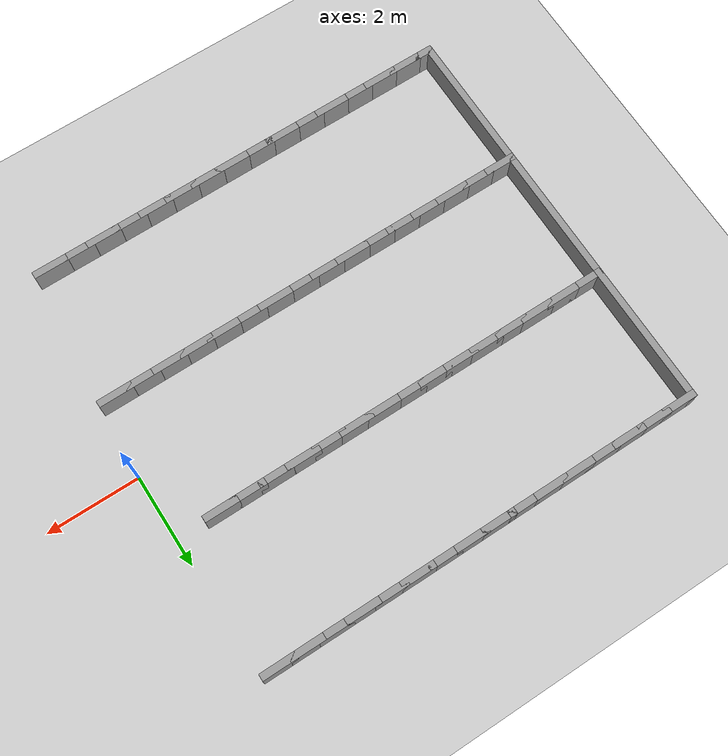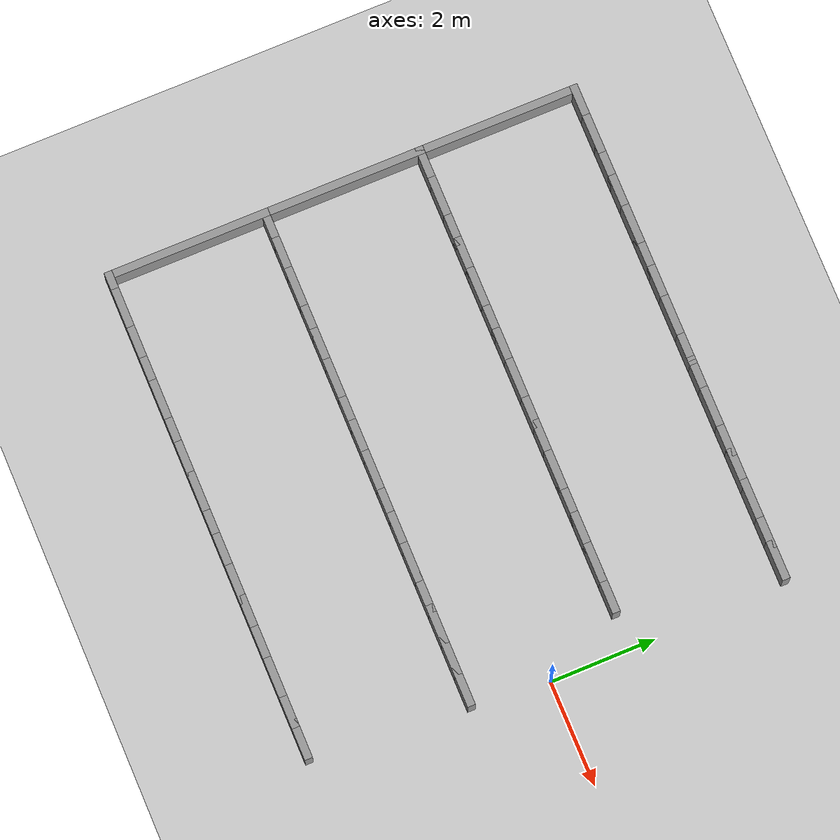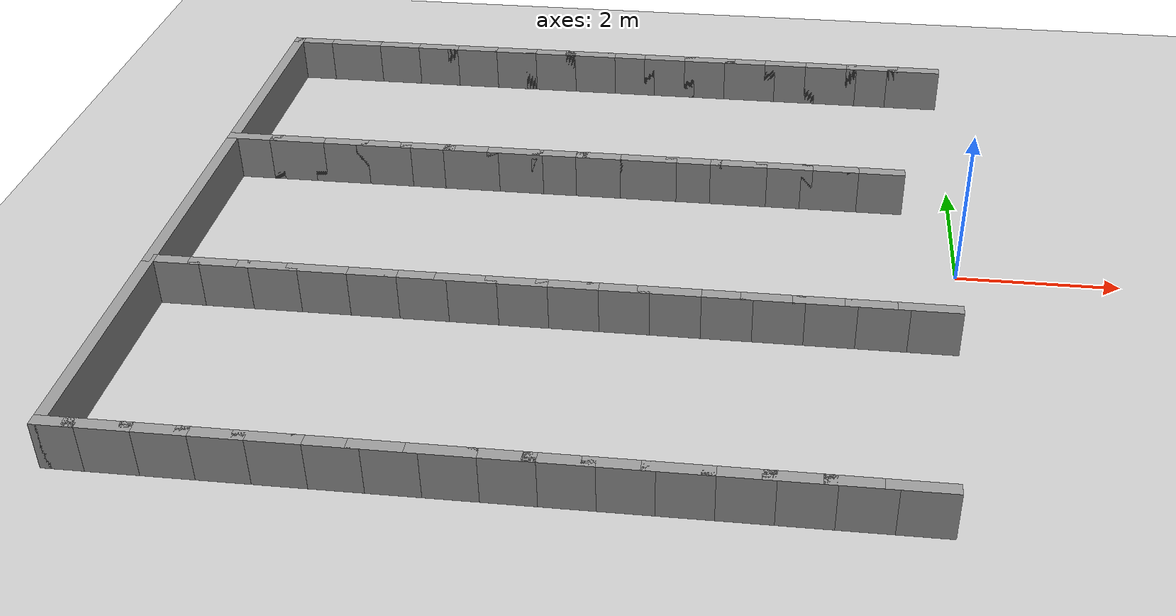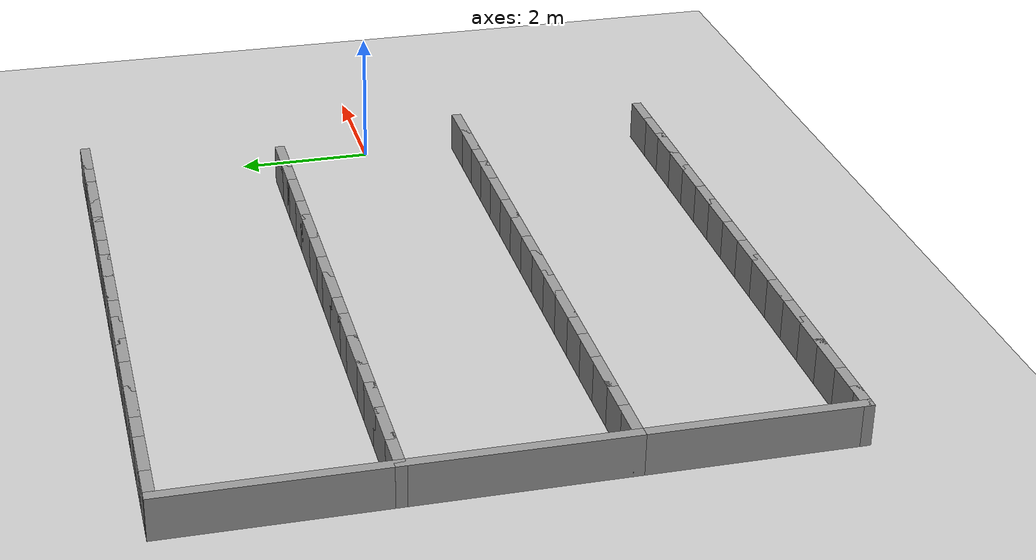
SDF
<sdf version="1.7">
 <world name="default">
  <model name="ground_plane">
   <static>1</static>
   <link name="link">
    <collision name="collision">
     <geometry><plane><normal>0 0 1</normal><size>100 100</size></plane></geometry>
     <surface><friction><ode><mu>100</mu><mu2>50</mu2></ode></friction></surface>
    </collision>
    <visual name="visual">
     <cast_shadows>0</cast_shadows>
     <geometry><plane><normal>0 0 1</normal><size>100 100</size></plane></geometry>
     <material>
      <script><uri>file://media/materials/scripts/gazebo.material</uri><name>Gazebo/Grey</name></script>
     </material>
    </visual>
   </link>
  </model>
  <model name="hairpin_safe">
   <link name="Wall_0">
    <collision name="Wall_0_Collision">
     <geometry><box><size>0.7500 0.1500 0.6000</size></box></geometry>
     <pose>0 0 0.3000 0 -0 0</pose>
    </collision>
    <visual name="Wall_0_Visual">
     <pose>0 0 0.3000 0 -0 0</pose>
     <geometry><box><size>0.7500 0.1500 0.6000</size></box></geometry>
     <material>
      <script><uri>file://media/materials/scripts/gazebo.material</uri><name>Gazebo/Grey</name></script>
      <ambient>1 1 1 1</ambient>
     </material>
    </visual>
    <pose>-9.4000 4.5000 0 0 -0 0.00000</pose>
   </link>
   <link name="Wall_1">
    <collision name="Wall_1_Collision">
     <geometry><box><size>0.7500 0.1500 0.6000</size></box></geometry>
     <pose>0 0 0.3000 0 -0 0</pose>
    </collision>
    <visual name="Wall_1_Visual">
     <pose>0 0 0.3000 0 -0 0</pose>
     <geometry><box><size>0.7500 0.1500 0.6000</size></box></geometry>
     <material>
      <script><uri>file://media/materials/scripts/gazebo.material</uri><name>Gazebo/Grey</name></script>
      <ambient>1 1 1 1</ambient>
     </material>
    </visual>
    <pose>-8.8000 4.5000 0 0 -0 0.00000</pose>
   </link>
   <link name="Wall_2">
    <collision name="Wall_2_Collision">
     <geometry><box><size>0.7500 0.1500 0.6000</size></box></geometry>
     <pose>0 0 0.3000 0 -0 0</pose>
    </collision>
    <visual name="Wall_2_Visual">
     <pose>0 0 0.3000 0 -0 0</pose>
     <geometry><box><size>0.7500 0.1500 0.6000</size></box></geometry>
     <material>
      <script><uri>file://media/materials/scripts/gazebo.material</uri><name>Gazebo/Grey</name></script>
      <ambient>1 1 1 1</ambient>
     </material>
    </visual>
    <pose>-8.2000 4.5000 0 0 -0 0.00000</pose>
   </link>
   <link name="Wall_3">
    <collision name="Wall_3_Collision">
     <geometry><box><size>0.7500 0.1500 0.6000</size></box></geometry>
     <pose>0 0 0.3000 0 -0 0</pose>
    </collision>
    <visual name="Wall_3_Visual">
     <pose>0 0 0.3000 0 -0 0</pose>
     <geometry><box><size>0.7500 0.1500 0.6000</size></box></geometry>
     <material>
      <script><uri>file://media/materials/scripts/gazebo.material</uri><name>Gazebo/Grey</name></script>
      <ambient>1 1 1 1</ambient>
     </material>
    </visual>
    <pose>-7.6000 4.5000 0 0 -0 0.00000</pose>
   </link>
   <link name="Wall_4">
    <collision name="Wall_4_Collision">
     <geometry><box><size>0.7500 0.1500 0.6000</size></box></geometry>
     <pose>0 0 0.3000 0 -0 0</pose>
    </collision>
    <visual name="Wall_4_Visual">
     <pose>0 0 0.3000 0 -0 0</pose>
     <geometry><box><size>0.7500 0.1500 0.6000</size></box></geometry>
     <material>
      <script><uri>file://media/materials/scripts/gazebo.material</uri><name>Gazebo/Grey</name></script>
      <ambient>1 1 1 1</ambient>
     </material>
    </visual>
    <pose>-7.0000 4.5000 0 0 -0 0.00000</pose>
   </link>
   <link name="Wall_5">
    <collision name="Wall_5_Collision">
     <geometry><box><size>0.7500 0.1500 0.6000</size></box></geometry>
     <pose>0 0 0.3000 0 -0 0</pose>
    </collision>
    <visual name="Wall_5_Visual">
     <pose>0 0 0.3000 0 -0 0</pose>
     <geometry><box><size>0.7500 0.1500 0.6000</size></box></geometry>
     <material>
      <script><uri>file://media/materials/scripts/gazebo.material</uri><name>Gazebo/Grey</name></script>
      <ambient>1 1 1 1</ambient>
     </material>
    </visual>
    <pose>-6.4000 4.5000 0 0 -0 0.00000</pose>
   </link>
   <link name="Wall_6">
    <collision name="Wall_6_Collision">
     <geometry><box><size>0.7500 0.1500 0.6000</size></box></geometry>
     <pose>0 0 0.3000 0 -0 0</pose>
    </collision>
    <visual name="Wall_6_Visual">
     <pose>0 0 0.3000 0 -0 0</pose>
     <geometry><box><size>0.7500 0.1500 0.6000</size></box></geometry>
     <material>
      <script><uri>file://media/materials/scripts/gazebo.material</uri><name>Gazebo/Grey</name></script>
      <ambient>1 1 1 1</ambient>
     </material>
    </visual>
    <pose>-5.8000 4.5000 0 0 -0 0.00000</pose>
   </link>
   <link name="Wall_7">
    <collision name="Wall_7_Collision">
     <geometry><box><size>0.7500 0.1500 0.6000</size></box></geometry>
     <pose>0 0 0.3000 0 -0 0</pose>
    </collision>
    <visual name="Wall_7_Visual">
     <pose>0 0 0.3000 0 -0 0</pose>
     <geometry><box><size>0.7500 0.1500 0.6000</size></box></geometry>
     <material>
      <script><uri>file://media/materials/scripts/gazebo.material</uri><name>Gazebo/Grey</name></script>
      <ambient>1 1 1 1</ambient>
     </material>
    </visual>
    <pose>-5.2000 4.5000 0 0 -0 0.00000</pose>
   </link>
   <link name="Wall_8">
    <collision name="Wall_8_Collision">
     <geometry><box><size>0.7500 0.1500 0.6000</size></box></geometry>
     <pose>0 0 0.3000 0 -0 0</pose>
    </collision>
    <visual name="Wall_8_Visual">
     <pose>0 0 0.3000 0 -0 0</pose>
     <geometry><box><size>0.7500 0.1500 0.6000</size></box></geometry>
     <material>
      <script><uri>file://media/materials/scripts/gazebo.material</uri><name>Gazebo/Grey</name></script>
      <ambient>1 1 1 1</ambient>
     </material>
    </visual>
    <pose>-4.6000 4.5000 0 0 -0 0.00000</pose>
   </link>
   <link name="Wall_9">
    <collision name="Wall_9_Collision">
     <geometry><box><size>0.7500 0.1500 0.6000</size></box></geometry>
     <pose>0 0 0.3000 0 -0 0</pose>
    </collision>
    <visual name="Wall_9_Visual">
     <pose>0 0 0.3000 0 -0 0</pose>
     <geometry><box><size>0.7500 0.1500 0.6000</size></box></geometry>
     <material>
      <script><uri>file://media/materials/scripts/gazebo.material</uri><name>Gazebo/Grey</name></script>
      <ambient>1 1 1 1</ambient>
     </material>
    </visual>
    <pose>-4.0000 4.5000 0 0 -0 0.00000</pose>
   </link>
   <link name="Wall_10">
    <collision name="Wall_10_Collision">
     <geometry><box><size>0.7500 0.1500 0.6000</size></box></geometry>
     <pose>0 0 0.3000 0 -0 0</pose>
    </collision>
    <visual name="Wall_10_Visual">
     <pose>0 0 0.3000 0 -0 0</pose>
     <geometry><box><size>0.7500 0.1500 0.6000</size></box></geometry>
     <material>
      <script><uri>file://media/materials/scripts/gazebo.material</uri><name>Gazebo/Grey</name></script>
      <ambient>1 1 1 1</ambient>
     </material>
    </visual>
    <pose>-3.4000 4.5000 0 0 -0 0.00000</pose>
   </link>
   <link name="Wall_11">
    <collision name="Wall_11_Collision">
     <geometry><box><size>0.7500 0.1500 0.6000</size></box></geometry>
     <pose>0 0 0.3000 0 -0 0</pose>
    </collision>
    <visual name="Wall_11_Visual">
     <pose>0 0 0.3000 0 -0 0</pose>
     <geometry><box><size>0.7500 0.1500 0.6000</size></box></geometry>
     <material>
      <script><uri>file://media/materials/scripts/gazebo.material</uri><name>Gazebo/Grey</name></script>
      <ambient>1 1 1 1</ambient>
     </material>
    </visual>
    <pose>-2.8000 4.5000 0 0 -0 0.00000</pose>
   </link>
   <link name="Wall_12">
    <collision name="Wall_12_Collision">
     <geometry><box><size>0.7500 0.1500 0.6000</size></box></geometry>
     <pose>0 0 0.3000 0 -0 0</pose>
    </collision>
    <visual name="Wall_12_Visual">
     <pose>0 0 0.3000 0 -0 0</pose>
     <geometry><box><size>0.7500 0.1500 0.6000</size></box></geometry>
     <material>
      <script><uri>file://media/materials/scripts/gazebo.material</uri><name>Gazebo/Grey</name></script>
      <ambient>1 1 1 1</ambient>
     </material>
    </visual>
    <pose>-2.2000 4.5000 0 0 -0 0.00000</pose>
   </link>
   <link name="Wall_13">
    <collision name="Wall_13_Collision">
     <geometry><box><size>0.7500 0.1500 0.6000</size></box></geometry>
     <pose>0 0 0.3000 0 -0 0</pose>
    </collision>
    <visual name="Wall_13_Visual">
     <pose>0 0 0.3000 0 -0 0</pose>
     <geometry><box><size>0.7500 0.1500 0.6000</size></box></geometry>
     <material>
      <script><uri>file://media/materials/scripts/gazebo.material</uri><name>Gazebo/Grey</name></script>
      <ambient>1 1 1 1</ambient>
     </material>
    </visual>
    <pose>-1.6000 4.5000 0 0 -0 0.00000</pose>
   </link>
   <link name="Wall_14">
    <collision name="Wall_14_Collision">
     <geometry><box><size>0.7500 0.1500 0.6000</size></box></geometry>
     <pose>0 0 0.3000 0 -0 0</pose>
    </collision>
    <visual name="Wall_14_Visual">
     <pose>0 0 0.3000 0 -0 0</pose>
     <geometry><box><size>0.7500 0.1500 0.6000</size></box></geometry>
     <material>
      <script><uri>file://media/materials/scripts/gazebo.material</uri><name>Gazebo/Grey</name></script>
      <ambient>1 1 1 1</ambient>
     </material>
    </visual>
    <pose>-1.0000 4.5000 0 0 -0 0.00000</pose>
   </link>
   <link name="Wall_15">
    <collision name="Wall_15_Collision">
     <geometry><box><size>0.7500 0.1500 0.6000</size></box></geometry>
     <pose>0 0 0.3000 0 -0 0</pose>
    </collision>
    <visual name="Wall_15_Visual">
     <pose>0 0 0.3000 0 -0 0</pose>
     <geometry><box><size>0.7500 0.1500 0.6000</size></box></geometry>
     <material>
      <script><uri>file://media/materials/scripts/gazebo.material</uri><name>Gazebo/Grey</name></script>
      <ambient>1 1 1 1</ambient>
     </material>
    </visual>
    <pose>-0.4000 4.5000 0 0 -0 0.00000</pose>
   </link>
   <link name="Wall_57">
    <collision name="Wall_57_Collision">
     <geometry><box><size>0.7500 0.1500 0.6000</size></box></geometry>
     <pose>0 0 0.3000 0 -0 0</pose>
    </collision>
    <visual name="Wall_57_Visual">
     <pose>0 0 0.3000 0 -0 0</pose>
     <geometry><box><size>0.7500 0.1500 0.6000</size></box></geometry>
     <material>
      <script><uri>file://media/materials/scripts/gazebo.material</uri><name>Gazebo/Grey</name></script>
      <ambient>1 1 1 1</ambient>
     </material>
    </visual>
    <pose>-0.6630 -4.5000 0 0 -0 3.14159</pose>
   </link>
   <link name="Wall_58">
    <collision name="Wall_58_Collision">
     <geometry><box><size>0.7500 0.1500 0.6000</size></box></geometry>
     <pose>0 0 0.3000 0 -0 0</pose>
    </collision>
    <visual name="Wall_58_Visual">
     <pose>0 0 0.3000 0 -0 0</pose>
     <geometry><box><size>0.7500 0.1500 0.6000</size></box></geometry>
     <material>
      <script><uri>file://media/materials/scripts/gazebo.material</uri><name>Gazebo/Grey</name></script>
      <ambient>1 1 1 1</ambient>
     </material>
    </visual>
    <pose>-1.2630 -4.5000 0 0 -0 3.14159</pose>
   </link>
   <link name="Wall_59">
    <collision name="Wall_59_Collision">
     <geometry><box><size>0.7500 0.1500 0.6000</size></box></geometry>
     <pose>0 0 0.3000 0 -0 0</pose>
    </collision>
    <visual name="Wall_59_Visual">
     <pose>0 0 0.3000 0 -0 0</pose>
     <geometry><box><size>0.7500 0.1500 0.6000</size></box></geometry>
     <material>
      <script><uri>file://media/materials/scripts/gazebo.material</uri><name>Gazebo/Grey</name></script>
      <ambient>1 1 1 1</ambient>
     </material>
    </visual>
    <pose>-1.8630 -4.5000 0 0 -0 3.14159</pose>
   </link>
   <link name="Wall_60">
    <collision name="Wall_60_Collision">
     <geometry><box><size>0.7500 0.1500 0.6000</size></box></geometry>
     <pose>0 0 0.3000 0 -0 0</pose>
    </collision>
    <visual name="Wall_60_Visual">
     <pose>0 0 0.3000 0 -0 0</pose>
     <geometry><box><size>0.7500 0.1500 0.6000</size></box></geometry>
     <material>
      <script><uri>file://media/materials/scripts/gazebo.material</uri><name>Gazebo/Grey</name></script>
      <ambient>1 1 1 1</ambient>
     </material>
    </visual>
    <pose>-2.4630 -4.5000 0 0 -0 3.14159</pose>
   </link>
   <link name="Wall_61">
    <collision name="Wall_61_Collision">
     <geometry><box><size>0.7500 0.1500 0.6000</size></box></geometry>
     <pose>0 0 0.3000 0 -0 0</pose>
    </collision>
    <visual name="Wall_61_Visual">
     <pose>0 0 0.3000 0 -0 0</pose>
     <geometry><box><size>0.7500 0.1500 0.6000</size></box></geometry>
     <material>
      <script><uri>file://media/materials/scripts/gazebo.material</uri><name>Gazebo/Grey</name></script>
      <ambient>1 1 1 1</ambient>
     </material>
    </visual>
    <pose>-3.0630 -4.5000 0 0 -0 3.14159</pose>
   </link>
   <link name="Wall_62">
    <collision name="Wall_62_Collision">
     <geometry><box><size>0.7500 0.1500 0.6000</size></box></geometry>
     <pose>0 0 0.3000 0 -0 0</pose>
    </collision>
    <visual name="Wall_62_Visual">
     <pose>0 0 0.3000 0 -0 0</pose>
     <geometry><box><size>0.7500 0.1500 0.6000</size></box></geometry>
     <material>
      <script><uri>file://media/materials/scripts/gazebo.material</uri><name>Gazebo/Grey</name></script>
      <ambient>1 1 1 1</ambient>
     </material>
    </visual>
    <pose>-3.6630 -4.5000 0 0 -0 3.14159</pose>
   </link>
   <link name="Wall_63">
    <collision name="Wall_63_Collision">
     <geometry><box><size>0.7500 0.1500 0.6000</size></box></geometry>
     <pose>0 0 0.3000 0 -0 0</pose>
    </collision>
    <visual name="Wall_63_Visual">
     <pose>0 0 0.3000 0 -0 0</pose>
     <geometry><box><size>0.7500 0.1500 0.6000</size></box></geometry>
     <material>
      <script><uri>file://media/materials/scripts/gazebo.material</uri><name>Gazebo/Grey</name></script>
      <ambient>1 1 1 1</ambient>
     </material>
    </visual>
    <pose>-4.2630 -4.5000 0 0 -0 3.14159</pose>
   </link>
   <link name="Wall_64">
    <collision name="Wall_64_Collision">
     <geometry><box><size>0.7500 0.1500 0.6000</size></box></geometry>
     <pose>0 0 0.3000 0 -0 0</pose>
    </collision>
    <visual name="Wall_64_Visual">
     <pose>0 0 0.3000 0 -0 0</pose>
     <geometry><box><size>0.7500 0.1500 0.6000</size></box></geometry>
     <material>
      <script><uri>file://media/materials/scripts/gazebo.material</uri><name>Gazebo/Grey</name></script>
      <ambient>1 1 1 1</ambient>
     </material>
    </visual>
    <pose>-4.8630 -4.5000 0 0 -0 3.14159</pose>
   </link>
   <link name="Wall_65">
    <collision name="Wall_65_Collision">
     <geometry><box><size>0.7500 0.1500 0.6000</size></box></geometry>
     <pose>0 0 0.3000 0 -0 0</pose>
    </collision>
    <visual name="Wall_65_Visual">
     <pose>0 0 0.3000 0 -0 0</pose>
     <geometry><box><size>0.7500 0.1500 0.6000</size></box></geometry>
     <material>
      <script><uri>file://media/materials/scripts/gazebo.material</uri><name>Gazebo/Grey</name></script>
      <ambient>1 1 1 1</ambient>
     </material>
    </visual>
    <pose>-5.4630 -4.5000 0 0 -0 3.14159</pose>
   </link>
   <link name="Wall_66">
    <collision name="Wall_66_Collision">
     <geometry><box><size>0.7500 0.1500 0.6000</size></box></geometry>
     <pose>0 0 0.3000 0 -0 0</pose>
    </collision>
    <visual name="Wall_66_Visual">
     <pose>0 0 0.3000 0 -0 0</pose>
     <geometry><box><size>0.7500 0.1500 0.6000</size></box></geometry>
     <material>
      <script><uri>file://media/materials/scripts/gazebo.material</uri><name>Gazebo/Grey</name></script>
      <ambient>1 1 1 1</ambient>
     </material>
    </visual>
    <pose>-6.0630 -4.5000 0 0 -0 3.14159</pose>
   </link>
   <link name="Wall_67">
    <collision name="Wall_67_Collision">
     <geometry><box><size>0.7500 0.1500 0.6000</size></box></geometry>
     <pose>0 0 0.3000 0 -0 0</pose>
    </collision>
    <visual name="Wall_67_Visual">
     <pose>0 0 0.3000 0 -0 0</pose>
     <geometry><box><size>0.7500 0.1500 0.6000</size></box></geometry>
     <material>
      <script><uri>file://media/materials/scripts/gazebo.material</uri><name>Gazebo/Grey</name></script>
      <ambient>1 1 1 1</ambient>
     </material>
    </visual>
    <pose>-6.6630 -4.5000 0 0 -0 3.14159</pose>
   </link>
   <link name="Wall_68">
    <collision name="Wall_68_Collision">
     <geometry><box><size>0.7500 0.1500 0.6000</size></box></geometry>
     <pose>0 0 0.3000 0 -0 0</pose>
    </collision>
    <visual name="Wall_68_Visual">
     <pose>0 0 0.3000 0 -0 0</pose>
     <geometry><box><size>0.7500 0.1500 0.6000</size></box></geometry>
     <material>
      <script><uri>file://media/materials/scripts/gazebo.material</uri><name>Gazebo/Grey</name></script>
      <ambient>1 1 1 1</ambient>
     </material>
    </visual>
    <pose>-7.2630 -4.5000 0 0 -0 3.14159</pose>
   </link>
   <link name="Wall_69">
    <collision name="Wall_69_Collision">
     <geometry><box><size>0.7500 0.1500 0.6000</size></box></geometry>
     <pose>0 0 0.3000 0 -0 0</pose>
    </collision>
    <visual name="Wall_69_Visual">
     <pose>0 0 0.3000 0 -0 0</pose>
     <geometry><box><size>0.7500 0.1500 0.6000</size></box></geometry>
     <material>
      <script><uri>file://media/materials/scripts/gazebo.material</uri><name>Gazebo/Grey</name></script>
      <ambient>1 1 1 1</ambient>
     </material>
    </visual>
    <pose>-7.8630 -4.5000 0 0 -0 3.14159</pose>
   </link>
   <link name="Wall_70">
    <collision name="Wall_70_Collision">
     <geometry><box><size>0.7500 0.1500 0.6000</size></box></geometry>
     <pose>0 0 0.3000 0 -0 0</pose>
    </collision>
    <visual name="Wall_70_Visual">
     <pose>0 0 0.3000 0 -0 0</pose>
     <geometry><box><size>0.7500 0.1500 0.6000</size></box></geometry>
     <material>
      <script><uri>file://media/materials/scripts/gazebo.material</uri><name>Gazebo/Grey</name></script>
      <ambient>1 1 1 1</ambient>
     </material>
    </visual>
    <pose>-8.4630 -4.5000 0 0 -0 3.14159</pose>
   </link>
   <link name="Wall_71">
    <collision name="Wall_71_Collision">
     <geometry><box><size>0.7500 0.1500 0.6000</size></box></geometry>
     <pose>0 0 0.3000 0 -0 0</pose>
    </collision>
    <visual name="Wall_71_Visual">
     <pose>0 0 0.3000 0 -0 0</pose>
     <geometry><box><size>0.7500 0.1500 0.6000</size></box></geometry>
     <material>
      <script><uri>file://media/materials/scripts/gazebo.material</uri><name>Gazebo/Grey</name></script>
      <ambient>1 1 1 1</ambient>
     </material>
    </visual>
    <pose>-9.0630 -4.5000 0 0 -0 3.14159</pose>
   </link>
   <link name="Wall_72">
    <collision name="Wall_72_Collision">
     <geometry><box><size>0.4870 0.1500 0.6000</size></box></geometry>
     <pose>0 0 0.3000 0 -0 0</pose>
    </collision>
    <visual name="Wall_72_Visual">
     <pose>0 0 0.3000 0 -0 0</pose>
     <geometry><box><size>0.4870 0.1500 0.6000</size></box></geometry>
     <material>
      <script><uri>file://media/materials/scripts/gazebo.material</uri><name>Gazebo/Grey</name></script>
      <ambient>1 1 1 1</ambient>
     </material>
    </visual>
    <pose>-9.5315 -4.5000 0 0 -0 3.14159</pose>
   </link>
   <link name="Wall_73">
    <collision name="Wall_73_Collision">
     <geometry><box><size>0.7500 0.1500 0.6000</size></box></geometry>
     <pose>0 0 0.3000 0 -0 0</pose>
    </collision>
    <visual name="Wall_73_Visual">
     <pose>0 0 0.3000 0 -0 0</pose>
     <geometry><box><size>0.7500 0.1500 0.6000</size></box></geometry>
     <material>
      <script><uri>file://media/materials/scripts/gazebo.material</uri><name>Gazebo/Grey</name></script>
      <ambient>1 1 1 1</ambient>
     </material>
    </visual>
    <pose>-9.4000 1.5000 0 0 -0 0.00000</pose>
   </link>
   <link name="Wall_74">
    <collision name="Wall_74_Collision">
     <geometry><box><size>0.7500 0.1500 0.6000</size></box></geometry>
     <pose>0 0 0.3000 0 -0 0</pose>
    </collision>
    <visual name="Wall_74_Visual">
     <pose>0 0 0.3000 0 -0 0</pose>
     <geometry><box><size>0.7500 0.1500 0.6000</size></box></geometry>
     <material>
      <script><uri>file://media/materials/scripts/gazebo.material</uri><name>Gazebo/Grey</name></script>
      <ambient>1 1 1 1</ambient>
     </material>
    </visual>
    <pose>-8.8000 1.5000 0 0 -0 0.00000</pose>
   </link>
   <link name="Wall_75">
    <collision name="Wall_75_Collision">
     <geometry><box><size>0.7500 0.1500 0.6000</size></box></geometry>
     <pose>0 0 0.3000 0 -0 0</pose>
    </collision>
    <visual name="Wall_75_Visual">
     <pose>0 0 0.3000 0 -0 0</pose>
     <geometry><box><size>0.7500 0.1500 0.6000</size></box></geometry>
     <material>
      <script><uri>file://media/materials/scripts/gazebo.material</uri><name>Gazebo/Grey</name></script>
      <ambient>1 1 1 1</ambient>
     </material>
    </visual>
    <pose>-8.2000 1.5000 0 0 -0 0.00000</pose>
   </link>
   <link name="Wall_76">
    <collision name="Wall_76_Collision">
     <geometry><box><size>0.7500 0.1500 0.6000</size></box></geometry>
     <pose>0 0 0.3000 0 -0 0</pose>
    </collision>
    <visual name="Wall_76_Visual">
     <pose>0 0 0.3000 0 -0 0</pose>
     <geometry><box><size>0.7500 0.1500 0.6000</size></box></geometry>
     <material>
      <script><uri>file://media/materials/scripts/gazebo.material</uri><name>Gazebo/Grey</name></script>
      <ambient>1 1 1 1</ambient>
     </material>
    </visual>
    <pose>-7.6000 1.5000 0 0 -0 0.00000</pose>
   </link>
   <link name="Wall_77">
    <collision name="Wall_77_Collision">
     <geometry><box><size>0.7500 0.1500 0.6000</size></box></geometry>
     <pose>0 0 0.3000 0 -0 0</pose>
    </collision>
    <visual name="Wall_77_Visual">
     <pose>0 0 0.3000 0 -0 0</pose>
     <geometry><box><size>0.7500 0.1500 0.6000</size></box></geometry>
     <material>
      <script><uri>file://media/materials/scripts/gazebo.material</uri><name>Gazebo/Grey</name></script>
      <ambient>1 1 1 1</ambient>
     </material>
    </visual>
    <pose>-7.0000 1.5000 0 0 -0 0.00000</pose>
   </link>
   <link name="Wall_78">
    <collision name="Wall_78_Collision">
     <geometry><box><size>0.7500 0.1500 0.6000</size></box></geometry>
     <pose>0 0 0.3000 0 -0 0</pose>
    </collision>
    <visual name="Wall_78_Visual">
     <pose>0 0 0.3000 0 -0 0</pose>
     <geometry><box><size>0.7500 0.1500 0.6000</size></box></geometry>
     <material>
      <script><uri>file://media/materials/scripts/gazebo.material</uri><name>Gazebo/Grey</name></script>
      <ambient>1 1 1 1</ambient>
     </material>
    </visual>
    <pose>-6.4000 1.5000 0 0 -0 0.00000</pose>
   </link>
   <link name="Wall_79">
    <collision name="Wall_79_Collision">
     <geometry><box><size>0.7500 0.1500 0.6000</size></box></geometry>
     <pose>0 0 0.3000 0 -0 0</pose>
    </collision>
    <visual name="Wall_79_Visual">
     <pose>0 0 0.3000 0 -0 0</pose>
     <geometry><box><size>0.7500 0.1500 0.6000</size></box></geometry>
     <material>
      <script><uri>file://media/materials/scripts/gazebo.material</uri><name>Gazebo/Grey</name></script>
      <ambient>1 1 1 1</ambient>
     </material>
    </visual>
    <pose>-5.8000 1.5000 0 0 -0 0.00000</pose>
   </link>
   <link name="Wall_80">
    <collision name="Wall_80_Collision">
     <geometry><box><size>0.7500 0.1500 0.6000</size></box></geometry>
     <pose>0 0 0.3000 0 -0 0</pose>
    </collision>
    <visual name="Wall_80_Visual">
     <pose>0 0 0.3000 0 -0 0</pose>
     <geometry><box><size>0.7500 0.1500 0.6000</size></box></geometry>
     <material>
      <script><uri>file://media/materials/scripts/gazebo.material</uri><name>Gazebo/Grey</name></script>
      <ambient>1 1 1 1</ambient>
     </material>
    </visual>
    <pose>-5.2000 1.5000 0 0 -0 0.00000</pose>
   </link>
   <link name="Wall_81">
    <collision name="Wall_81_Collision">
     <geometry><box><size>0.7500 0.1500 0.6000</size></box></geometry>
     <pose>0 0 0.3000 0 -0 0</pose>
    </collision>
    <visual name="Wall_81_Visual">
     <pose>0 0 0.3000 0 -0 0</pose>
     <geometry><box><size>0.7500 0.1500 0.6000</size></box></geometry>
     <material>
      <script><uri>file://media/materials/scripts/gazebo.material</uri><name>Gazebo/Grey</name></script>
      <ambient>1 1 1 1</ambient>
     </material>
    </visual>
    <pose>-4.6000 1.5000 0 0 -0 0.00000</pose>
   </link>
   <link name="Wall_82">
    <collision name="Wall_82_Collision">
     <geometry><box><size>0.7500 0.1500 0.6000</size></box></geometry>
     <pose>0 0 0.3000 0 -0 0</pose>
    </collision>
    <visual name="Wall_82_Visual">
     <pose>0 0 0.3000 0 -0 0</pose>
     <geometry><box><size>0.7500 0.1500 0.6000</size></box></geometry>
     <material>
      <script><uri>file://media/materials/scripts/gazebo.material</uri><name>Gazebo/Grey</name></script>
      <ambient>1 1 1 1</ambient>
     </material>
    </visual>
    <pose>-4.0000 1.5000 0 0 -0 0.00000</pose>
   </link>
   <link name="Wall_83">
    <collision name="Wall_83_Collision">
     <geometry><box><size>0.7500 0.1500 0.6000</size></box></geometry>
     <pose>0 0 0.3000 0 -0 0</pose>
    </collision>
    <visual name="Wall_83_Visual">
     <pose>0 0 0.3000 0 -0 0</pose>
     <geometry><box><size>0.7500 0.1500 0.6000</size></box></geometry>
     <material>
      <script><uri>file://media/materials/scripts/gazebo.material</uri><name>Gazebo/Grey</name></script>
      <ambient>1 1 1 1</ambient>
     </material>
    </visual>
    <pose>-3.4000 1.5000 0 0 -0 0.00000</pose>
   </link>
   <link name="Wall_84">
    <collision name="Wall_84_Collision">
     <geometry><box><size>0.7500 0.1500 0.6000</size></box></geometry>
     <pose>0 0 0.3000 0 -0 0</pose>
    </collision>
    <visual name="Wall_84_Visual">
     <pose>0 0 0.3000 0 -0 0</pose>
     <geometry><box><size>0.7500 0.1500 0.6000</size></box></geometry>
     <material>
      <script><uri>file://media/materials/scripts/gazebo.material</uri><name>Gazebo/Grey</name></script>
      <ambient>1 1 1 1</ambient>
     </material>
    </visual>
    <pose>-2.8000 1.5000 0 0 -0 0.00000</pose>
   </link>
   <link name="Wall_85">
    <collision name="Wall_85_Collision">
     <geometry><box><size>0.7500 0.1500 0.6000</size></box></geometry>
     <pose>0 0 0.3000 0 -0 0</pose>
    </collision>
    <visual name="Wall_85_Visual">
     <pose>0 0 0.3000 0 -0 0</pose>
     <geometry><box><size>0.7500 0.1500 0.6000</size></box></geometry>
     <material>
      <script><uri>file://media/materials/scripts/gazebo.material</uri><name>Gazebo/Grey</name></script>
      <ambient>1 1 1 1</ambient>
     </material>
    </visual>
    <pose>-2.2000 1.5000 0 0 -0 0.00000</pose>
   </link>
   <link name="Wall_86">
    <collision name="Wall_86_Collision">
     <geometry><box><size>0.7500 0.1500 0.6000</size></box></geometry>
     <pose>0 0 0.3000 0 -0 0</pose>
    </collision>
    <visual name="Wall_86_Visual">
     <pose>0 0 0.3000 0 -0 0</pose>
     <geometry><box><size>0.7500 0.1500 0.6000</size></box></geometry>
     <material>
      <script><uri>file://media/materials/scripts/gazebo.material</uri><name>Gazebo/Grey</name></script>
      <ambient>1 1 1 1</ambient>
     </material>
    </visual>
    <pose>-1.6000 1.5000 0 0 -0 0.00000</pose>
   </link>
   <link name="Wall_87">
    <collision name="Wall_87_Collision">
     <geometry><box><size>0.7500 0.1500 0.6000</size></box></geometry>
     <pose>0 0 0.3000 0 -0 0</pose>
    </collision>
    <visual name="Wall_87_Visual">
     <pose>0 0 0.3000 0 -0 0</pose>
     <geometry><box><size>0.7500 0.1500 0.6000</size></box></geometry>
     <material>
      <script><uri>file://media/materials/scripts/gazebo.material</uri><name>Gazebo/Grey</name></script>
      <ambient>1 1 1 1</ambient>
     </material>
    </visual>
    <pose>-1.0000 1.5000 0 0 -0 0.00000</pose>
   </link>
   <link name="Wall_114">
    <collision name="Wall_114_Collision">
     <geometry><box><size>0.7500 0.1500 0.6000</size></box></geometry>
     <pose>0 0 0.3000 0 -0 0</pose>
    </collision>
    <visual name="Wall_114_Visual">
     <pose>0 0 0.3000 0 -0 0</pose>
     <geometry><box><size>0.7500 0.1500 0.6000</size></box></geometry>
     <material>
      <script><uri>file://media/materials/scripts/gazebo.material</uri><name>Gazebo/Grey</name></script>
      <ambient>1 1 1 1</ambient>
     </material>
    </visual>
    <pose>-0.4403 -1.5000 0 0 -0 3.14159</pose>
   </link>
   <link name="Wall_115">
    <collision name="Wall_115_Collision">
     <geometry><box><size>0.7500 0.1500 0.6000</size></box></geometry>
     <pose>0 0 0.3000 0 -0 0</pose>
    </collision>
    <visual name="Wall_115_Visual">
     <pose>0 0 0.3000 0 -0 0</pose>
     <geometry><box><size>0.7500 0.1500 0.6000</size></box></geometry>
     <material>
      <script><uri>file://media/materials/scripts/gazebo.material</uri><name>Gazebo/Grey</name></script>
      <ambient>1 1 1 1</ambient>
     </material>
    </visual>
    <pose>-1.0403 -1.5000 0 0 -0 3.14159</pose>
   </link>
   <link name="Wall_116">
    <collision name="Wall_116_Collision">
     <geometry><box><size>0.7500 0.1500 0.6000</size></box></geometry>
     <pose>0 0 0.3000 0 -0 0</pose>
    </collision>
    <visual name="Wall_116_Visual">
     <pose>0 0 0.3000 0 -0 0</pose>
     <geometry><box><size>0.7500 0.1500 0.6000</size></box></geometry>
     <material>
      <script><uri>file://media/materials/scripts/gazebo.material</uri><name>Gazebo/Grey</name></script>
      <ambient>1 1 1 1</ambient>
     </material>
    </visual>
    <pose>-1.6403 -1.5000 0 0 -0 3.14159</pose>
   </link>
   <link name="Wall_117">
    <collision name="Wall_117_Collision">
     <geometry><box><size>0.7500 0.1500 0.6000</size></box></geometry>
     <pose>0 0 0.3000 0 -0 0</pose>
    </collision>
    <visual name="Wall_117_Visual">
     <pose>0 0 0.3000 0 -0 0</pose>
     <geometry><box><size>0.7500 0.1500 0.6000</size></box></geometry>
     <material>
      <script><uri>file://media/materials/scripts/gazebo.material</uri><name>Gazebo/Grey</name></script>
      <ambient>1 1 1 1</ambient>
     </material>
    </visual>
    <pose>-2.2403 -1.5000 0 0 -0 3.14159</pose>
   </link>
   <link name="Wall_118">
    <collision name="Wall_118_Collision">
     <geometry><box><size>0.7500 0.1500 0.6000</size></box></geometry>
     <pose>0 0 0.3000 0 -0 0</pose>
    </collision>
    <visual name="Wall_118_Visual">
     <pose>0 0 0.3000 0 -0 0</pose>
     <geometry><box><size>0.7500 0.1500 0.6000</size></box></geometry>
     <material>
      <script><uri>file://media/materials/scripts/gazebo.material</uri><name>Gazebo/Grey</name></script>
      <ambient>1 1 1 1</ambient>
     </material>
    </visual>
    <pose>-2.8403 -1.5000 0 0 -0 3.14159</pose>
   </link>
   <link name="Wall_119">
    <collision name="Wall_119_Collision">
     <geometry><box><size>0.7500 0.1500 0.6000</size></box></geometry>
     <pose>0 0 0.3000 0 -0 0</pose>
    </collision>
    <visual name="Wall_119_Visual">
     <pose>0 0 0.3000 0 -0 0</pose>
     <geometry><box><size>0.7500 0.1500 0.6000</size></box></geometry>
     <material>
      <script><uri>file://media/materials/scripts/gazebo.material</uri><name>Gazebo/Grey</name></script>
      <ambient>1 1 1 1</ambient>
     </material>
    </visual>
    <pose>-3.4403 -1.5000 0 0 -0 3.14159</pose>
   </link>
   <link name="Wall_120">
    <collision name="Wall_120_Collision">
     <geometry><box><size>0.7500 0.1500 0.6000</size></box></geometry>
     <pose>0 0 0.3000 0 -0 0</pose>
    </collision>
    <visual name="Wall_120_Visual">
     <pose>0 0 0.3000 0 -0 0</pose>
     <geometry><box><size>0.7500 0.1500 0.6000</size></box></geometry>
     <material>
      <script><uri>file://media/materials/scripts/gazebo.material</uri><name>Gazebo/Grey</name></script>
      <ambient>1 1 1 1</ambient>
     </material>
    </visual>
    <pose>-4.0403 -1.5000 0 0 -0 3.14159</pose>
   </link>
   <link name="Wall_121">
    <collision name="Wall_121_Collision">
     <geometry><box><size>0.7500 0.1500 0.6000</size></box></geometry>
     <pose>0 0 0.3000 0 -0 0</pose>
    </collision>
    <visual name="Wall_121_Visual">
     <pose>0 0 0.3000 0 -0 0</pose>
     <geometry><box><size>0.7500 0.1500 0.6000</size></box></geometry>
     <material>
      <script><uri>file://media/materials/scripts/gazebo.material</uri><name>Gazebo/Grey</name></script>
      <ambient>1 1 1 1</ambient>
     </material>
    </visual>
    <pose>-4.6403 -1.5000 0 0 -0 3.14159</pose>
   </link>
   <link name="Wall_122">
    <collision name="Wall_122_Collision">
     <geometry><box><size>0.7500 0.1500 0.6000</size></box></geometry>
     <pose>0 0 0.3000 0 -0 0</pose>
    </collision>
    <visual name="Wall_122_Visual">
     <pose>0 0 0.3000 0 -0 0</pose>
     <geometry><box><size>0.7500 0.1500 0.6000</size></box></geometry>
     <material>
      <script><uri>file://media/materials/scripts/gazebo.material</uri><name>Gazebo/Grey</name></script>
      <ambient>1 1 1 1</ambient>
     </material>
    </visual>
    <pose>-5.2403 -1.5000 0 0 -0 3.14159</pose>
   </link>
   <link name="Wall_123">
    <collision name="Wall_123_Collision">
     <geometry><box><size>0.7500 0.1500 0.6000</size></box></geometry>
     <pose>0 0 0.3000 0 -0 0</pose>
    </collision>
    <visual name="Wall_123_Visual">
     <pose>0 0 0.3000 0 -0 0</pose>
     <geometry><box><size>0.7500 0.1500 0.6000</size></box></geometry>
     <material>
      <script><uri>file://media/materials/scripts/gazebo.material</uri><name>Gazebo/Grey</name></script>
      <ambient>1 1 1 1</ambient>
     </material>
    </visual>
    <pose>-5.8403 -1.5000 0 0 -0 3.14159</pose>
   </link>
   <link name="Wall_124">
    <collision name="Wall_124_Collision">
     <geometry><box><size>0.7500 0.1500 0.6000</size></box></geometry>
     <pose>0 0 0.3000 0 -0 0</pose>
    </collision>
    <visual name="Wall_124_Visual">
     <pose>0 0 0.3000 0 -0 0</pose>
     <geometry><box><size>0.7500 0.1500 0.6000</size></box></geometry>
     <material>
      <script><uri>file://media/materials/scripts/gazebo.material</uri><name>Gazebo/Grey</name></script>
      <ambient>1 1 1 1</ambient>
     </material>
    </visual>
    <pose>-6.4403 -1.5000 0 0 -0 3.14159</pose>
   </link>
   <link name="Wall_125">
    <collision name="Wall_125_Collision">
     <geometry><box><size>0.7500 0.1500 0.6000</size></box></geometry>
     <pose>0 0 0.3000 0 -0 0</pose>
    </collision>
    <visual name="Wall_125_Visual">
     <pose>0 0 0.3000 0 -0 0</pose>
     <geometry><box><size>0.7500 0.1500 0.6000</size></box></geometry>
     <material>
      <script><uri>file://media/materials/scripts/gazebo.material</uri><name>Gazebo/Grey</name></script>
      <ambient>1 1 1 1</ambient>
     </material>
    </visual>
    <pose>-7.0403 -1.5000 0 0 -0 3.14159</pose>
   </link>
   <link name="Wall_126">
    <collision name="Wall_126_Collision">
     <geometry><box><size>0.7500 0.1500 0.6000</size></box></geometry>
     <pose>0 0 0.3000 0 -0 0</pose>
    </collision>
    <visual name="Wall_126_Visual">
     <pose>0 0 0.3000 0 -0 0</pose>
     <geometry><box><size>0.7500 0.1500 0.6000</size></box></geometry>
     <material>
      <script><uri>file://media/materials/scripts/gazebo.material</uri><name>Gazebo/Grey</name></script>
      <ambient>1 1 1 1</ambient>
     </material>
    </visual>
    <pose>-7.6403 -1.5000 0 0 -0 3.14159</pose>
   </link>
   <link name="Wall_127">
    <collision name="Wall_127_Collision">
     <geometry><box><size>0.7500 0.1500 0.6000</size></box></geometry>
     <pose>0 0 0.3000 0 -0 0</pose>
    </collision>
    <visual name="Wall_127_Visual">
     <pose>0 0 0.3000 0 -0 0</pose>
     <geometry><box><size>0.7500 0.1500 0.6000</size></box></geometry>
     <material>
      <script><uri>file://media/materials/scripts/gazebo.material</uri><name>Gazebo/Grey</name></script>
      <ambient>1 1 1 1</ambient>
     </material>
    </visual>
    <pose>-8.2403 -1.5000 0 0 -0 3.14159</pose>
   </link>
   <link name="Wall_128">
    <collision name="Wall_128_Collision">
     <geometry><box><size>0.7500 0.1500 0.6000</size></box></geometry>
     <pose>0 0 0.3000 0 -0 0</pose>
    </collision>
    <visual name="Wall_128_Visual">
     <pose>0 0 0.3000 0 -0 0</pose>
     <geometry><box><size>0.7500 0.1500 0.6000</size></box></geometry>
     <material>
      <script><uri>file://media/materials/scripts/gazebo.material</uri><name>Gazebo/Grey</name></script>
      <ambient>1 1 1 1</ambient>
     </material>
    </visual>
    <pose>-8.8403 -1.5000 0 0 -0 3.14159</pose>
   </link>
   <link name="Wall_129">
    <collision name="Wall_129_Collision">
     <geometry><box><size>0.7097 0.1500 0.6000</size></box></geometry>
     <pose>0 0 0.3000 0 -0 0</pose>
    </collision>
    <visual name="Wall_129_Visual">
     <pose>0 0 0.3000 0 -0 0</pose>
     <geometry><box><size>0.7097 0.1500 0.6000</size></box></geometry>
     <material>
      <script><uri>file://media/materials/scripts/gazebo.material</uri><name>Gazebo/Grey</name></script>
      <ambient>1 1 1 1</ambient>
     </material>
    </visual>
    <pose>-9.4201 -1.5000 0 0 -0 3.14159</pose>
   </link>
   <link name="Wall_130">
    <collision name="Wall_130_Collision">
     <geometry><box><size>3.1500 0.1500 0.6000</size></box></geometry>
     <pose>0 0 0.3000 0 -0 0</pose>
    </collision>
    <visual name="Wall_130_Visual">
     <pose>0 0 0.3000 0 -0 0</pose>
     <geometry><box><size>3.1500 0.1500 0.6000</size></box></geometry>
     <material>
      <script><uri>file://media/materials/scripts/gazebo.material</uri><name>Gazebo/Grey</name></script>
      <ambient>1 1 1 1</ambient>
     </material>
    </visual>
    <pose>-9.7000 3.0000 0 0 -0 1.57080</pose>
   </link>
   <link name="Wall_131">
    <collision name="Wall_131_Collision">
     <geometry><box><size>3.1500 0.1500 0.6000</size></box></geometry>
     <pose>0 0 0.3000 0 -0 0</pose>
    </collision>
    <visual name="Wall_131_Visual">
     <pose>0 0 0.3000 0 -0 0</pose>
     <geometry><box><size>3.1500 0.1500 0.6000</size></box></geometry>
     <material>
      <script><uri>file://media/materials/scripts/gazebo.material</uri><name>Gazebo/Grey</name></script>
      <ambient>1 1 1 1</ambient>
     </material>
    </visual>
    <pose>-9.7000 -3.0000 0 0 -0 1.57080</pose>
   </link>
   <link name="Wall_132">
    <collision name="Wall_132_Collision">
     <geometry><box><size>3.1500 0.1500 0.6000</size></box></geometry>
     <pose>0 0 0.3000 0 -0 0</pose>
    </collision>
    <visual name="Wall_132_Visual">
     <pose>0 0 0.3000 0 -0 0</pose>
     <geometry><box><size>3.1500 0.1500 0.6000</size></box></geometry>
     <material>
      <script><uri>file://media/materials/scripts/gazebo.material</uri><name>Gazebo/Grey</name></script>
      <ambient>1 1 1 1</ambient>
     </material>
    </visual>
    <pose>-9.7000 0.0000 0 0 -0 -1.57080</pose>
   </link>
   <static>1</static>
  </model>
 </world>
</sdf>
